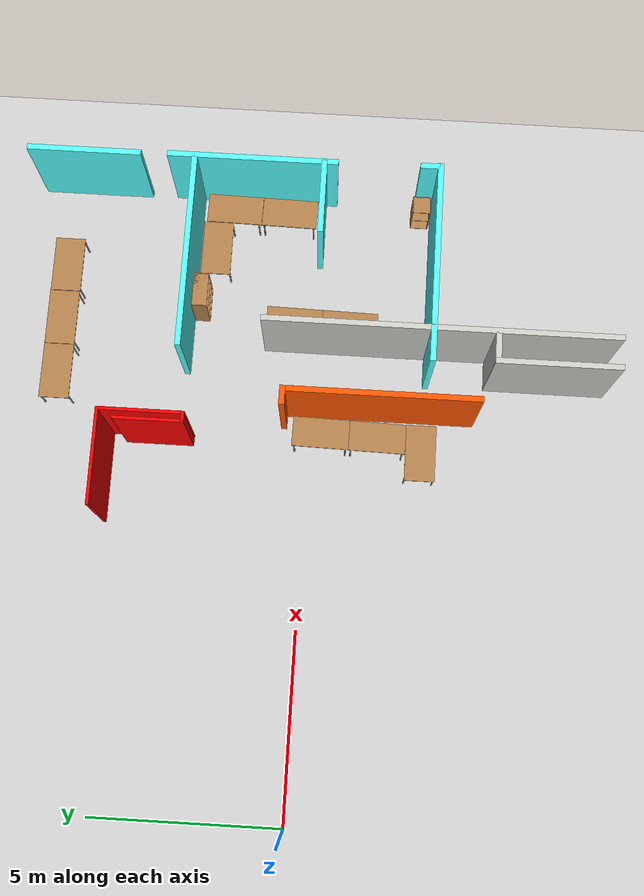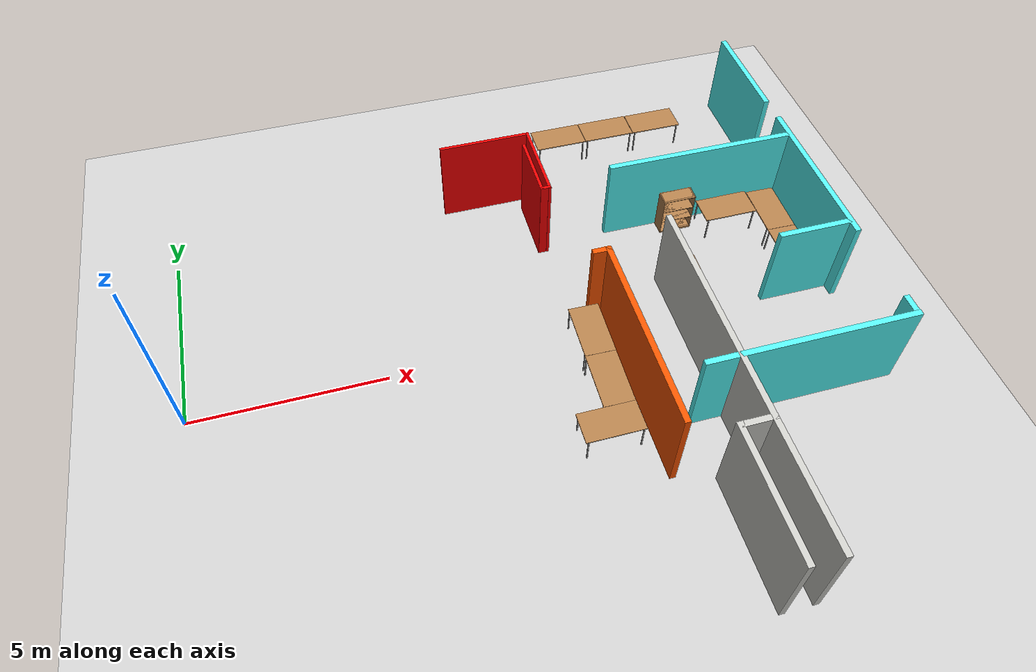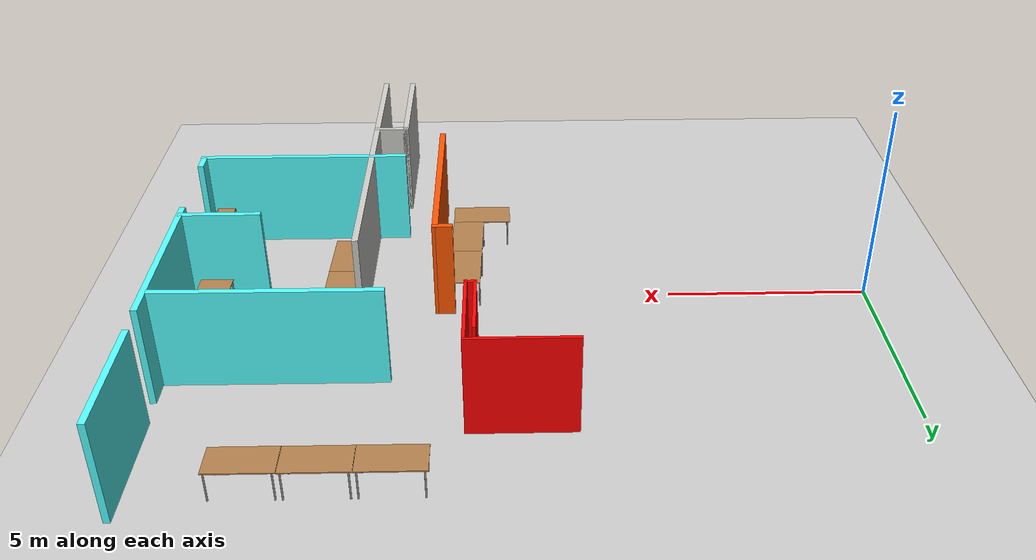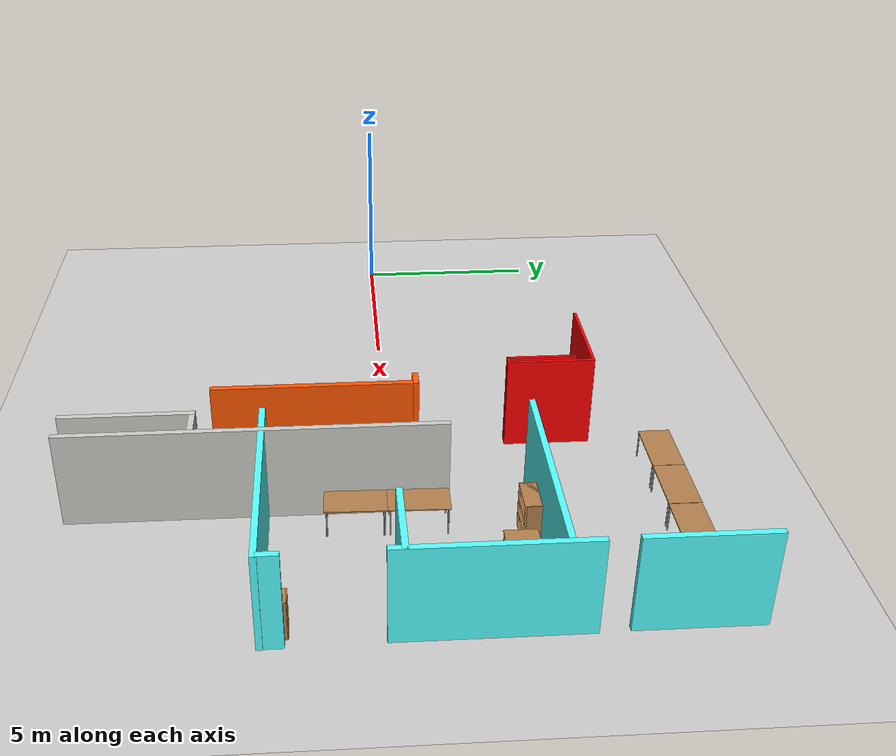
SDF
<sdf version="1.7">
 <world name="default">
  <model name="ground_plane">
   <static>1</static>
   <link name="link">
    <collision name="collision">
     <geometry><plane><normal>0 0 1</normal><size>100 100</size></plane></geometry>
     <surface>
      <contact><collide_bitmask>65535</collide_bitmask></contact>
      <friction><ode><mu>100</mu><mu2>50</mu2></ode></friction>
     </surface>
    </collision>
    <visual name="visual">
     <cast_shadows>0</cast_shadows>
     <geometry><plane><normal>0 0 1</normal><size>100 100</size></plane></geometry>
     <material>
      <script><uri>file://media/materials/scripts/gazebo.material</uri><name>Gazebo/Grey</name></script>
     </material>
    </visual>
   </link>
  </model>
  <model name="finalfinal">
   <pose>-1.52945 0.041943 0 0 -0 0</pose>
   <link name="Wall_115">
    <collision name="Wall_115_Collision">
     <geometry><box><size>2.5 0.08 2.5</size></box></geometry>
     <pose>0 0 1.25 0 -0 0</pose>
    </collision>
    <visual name="Wall_115_Visual">
     <pose>0 0 1.25 0 -0 0</pose>
     <geometry><box><size>2.5 0.08 2.5</size></box></geometry>
     <material>
      <script><uri>file://media/materials/scripts/gazebo.material</uri><name>Gazebo/Grey</name></script>
      <ambient>1 0 0 1</ambient>
     </material>
     <meta><layer>0</layer></meta>
    </visual>
    <pose>10.3562 5.20204 0 0 -0 0</pose>
   </link>
   <link name="Wall_146">
    <collision name="Wall_146_Collision">
     <geometry><box><size>5.4 0.15 2.5</size></box></geometry>
     <pose>0 0 1.25 0 -0 0</pose>
    </collision>
    <visual name="Wall_146_Visual">
     <pose>0 0 1.25 0 -0 0</pose>
     <geometry><box><size>5.4 0.15 2.5</size></box></geometry>
     <material>
      <script><uri>file://media/materials/scripts/gazebo.material</uri><name>Gazebo/Grey</name></script>
      <ambient>0.333333 1 1 1</ambient>
     </material>
     <meta><layer>0</layer></meta>
    </visual>
    <pose>15.9871 -3.13858 0 0 -0 0</pose>
   </link>
   <link name="Wall_151">
    <collision name="Wall_151_Collision">
     <geometry><box><size>3.25 0.15 2.5</size></box></geometry>
     <pose>0 0 1.25 0 -0 0</pose>
    </collision>
    <visual name="Wall_151_Visual">
     <pose>0 0 1.25 0 -0 0</pose>
     <geometry><box><size>3.25 0.15 2.5</size></box></geometry>
     <material>
      <script><uri>file://media/materials/scripts/gazebo.material</uri><name>Gazebo/CeilingTiled</name></script>
      <ambient>1 0.333333 0 1</ambient>
     </material>
     <meta><layer>0</layer></meta>
    </visual>
    <pose>13.3962 -6.33688 0 0 -0 -1.5708</pose>
   </link>
   <link name="Wall_154">
    <collision name="Wall_154_Collision">
     <geometry><box><size>0.9 0.15 2.5</size></box></geometry>
     <pose>0 0 1.25 0 -0 0</pose>
    </collision>
    <visual name="Wall_154_Visual">
     <pose>0 0 1.25 0 -0 0</pose>
     <geometry><box><size>0.9 0.15 2.5</size></box></geometry>
     <material>
      <script><uri>file://media/materials/scripts/gazebo.material</uri><name>Gazebo/CeilingTiled</name></script>
      <ambient>1 0.333333 0 1</ambient>
     </material>
     <meta><layer>0</layer></meta>
    </visual>
    <pose>13.806 -4.78688 0 0 -0 0</pose>
   </link>
   <link name="Wall_156">
    <collision name="Wall_156_Collision">
     <geometry><box><size>3.5 0.15 2.5</size></box></geometry>
     <pose>0 0 1.25 0 -0 0</pose>
    </collision>
    <visual name="Wall_156_Visual">
     <pose>0 0 1.25 0 -0 0</pose>
     <geometry><box><size>3 0.15 2.5</size></box></geometry>
     <material>
      <script><uri>file://media/materials/scripts/gazebo.material</uri><name>Gazebo/Grey</name></script>
      <ambient>0.333333 1 1 1</ambient>
     </material>
     <meta><layer>0</layer></meta>
    </visual>
    <pose>18.531 6.22698 0 0 -0 -1.5708</pose>
   </link>
   <link name="Wall_158">
    <collision name="Wall_158_Collision">
     <geometry><box><size>4.5 0.15 2.5</size></box></geometry>
     <pose>0 0 1.25 0 -0 0</pose>
    </collision>
    <visual name="Wall_158_Visual">
     <pose>0 0 1.25 0 -0 0</pose>
     <geometry><box><size>4.5 0.15 2.5</size></box></geometry>
     <material>
      <script><uri>file://media/materials/scripts/gazebo.material</uri><name>Gazebo/Grey</name></script>
      <ambient>0.333333 1 1 1</ambient>
     </material>
     <meta><layer>0</layer></meta>
    </visual>
    <pose>18.5588 1.79182 0 0 -0 -1.5708</pose>
   </link>
   <link name="Wall_162">
    <collision name="Wall_162_Collision">
     <geometry><box><size>5.18 0.15 2.5</size></box></geometry>
     <pose>0 0 1.25 0 -0 0</pose>
    </collision>
    <visual name="Wall_162_Visual">
     <pose>0 0 1.25 0 -0 0</pose>
     <geometry><box><size>5.18 0.15 2.5</size></box></geometry>
     <material>
      <script><uri>file://media/materials/scripts/gazebo.material</uri><name>Gazebo/Grey</name></script>
      <ambient>0.333333 1 1 1</ambient>
     </material>
     <meta><layer>0</layer></meta>
    </visual>
    <pose>15.9115 3.32497 0 0 -0 3.13784</pose>
   </link>
   <link name="Wall_170">
    <collision name="Wall_170_Collision">
     <geometry><box><size>1.8 0.08 2.5</size></box></geometry>
     <pose>0 0 1.25 0 -0 0</pose>
    </collision>
    <visual name="Wall_170_Visual">
     <pose>0 0 1.25 0 -0 0</pose>
     <geometry><box><size>1.8 0.08 2.5</size></box></geometry>
     <material>
      <script><uri>file://media/materials/scripts/gazebo.material</uri><name>Gazebo/Grey</name></script>
      <ambient>1 0 0 1</ambient>
     </material>
     <meta><layer>0</layer></meta>
    </visual>
    <pose>11.3522 3.911 0 0 -0 -1.5708</pose>
   </link>
   <link name="Wall_172">
    <collision name="Wall_172_Collision">
     <geometry><box><size>2.23 0.08 2.5</size></box></geometry>
     <pose>0 0 1.25 0 -0 0</pose>
    </collision>
    <visual name="Wall_172_Visual">
     <pose>0 0 1.25 0 -0 0</pose>
     <geometry><box><size>2.23 0.08 2.5</size></box></geometry>
     <material>
      <script><uri>file://media/materials/scripts/gazebo.material</uri><name>Gazebo/Grey</name></script>
      <ambient>1 0 0 1</ambient>
     </material>
     <meta><layer>0</layer></meta>
    </visual>
    <pose>11.5668 4.11953 0 0 -0 -1.5708</pose>
   </link>
   <link name="Wall_174">
    <collision name="Wall_174_Collision">
     <geometry><box><size>0.28 0.08 2.5</size></box></geometry>
     <pose>0 0 1.25 0 -0 0</pose>
    </collision>
    <visual name="Wall_174_Visual">
     <pose>0 0 1.25 0 -0 0</pose>
     <geometry><box><size>0.28 0.08 2.5</size></box></geometry>
     <material>
      <script><uri>file://media/materials/scripts/gazebo.material</uri><name>Gazebo/Grey</name></script>
      <ambient>1 0 0 1</ambient>
     </material>
     <meta><layer>0</layer></meta>
    </visual>
    <pose>11.4569 3.04845 0 0 -0 0</pose>
   </link>
   <link name="Wall_178">
    <collision name="Wall_178_Collision">
     <geometry><box><size>2 0.15 2.5</size></box></geometry>
     <pose>0 0 1.25 0 -0 0</pose>
    </collision>
    <visual name="Wall_178_Visual">
     <pose>0 0 1.25 0 -0 0</pose>
     <geometry><box><size>2 0.15 2.5</size></box></geometry>
     <material>
      <script><uri>file://media/materials/scripts/gazebo.material</uri><name>Gazebo/Grey</name></script>
      <ambient>0.333333 1 1 1</ambient>
     </material>
     <meta><layer>0</layer></meta>
    </visual>
    <pose>17.5971 -0.088137 0 0 -0 0</pose>
   </link>
   <link name="Wall_180">
    <collision name="Wall_180_Collision">
     <geometry><box><size>0.5 0.15 2.5</size></box></geometry>
     <pose>0 0 1.25 0 -0 0</pose>
    </collision>
    <visual name="Wall_180_Visual">
     <pose>0 0 1.25 0 -0 0</pose>
     <geometry><box><size>0.5 0.15 2.5</size></box></geometry>
     <material>
      <script><uri>file://media/materials/scripts/gazebo.material</uri><name>Gazebo/Grey</name></script>
      <ambient>0.333333 1 1 1</ambient>
     </material>
     <meta><layer>0</layer></meta>
    </visual>
    <pose>18.594 -2.85834 0 0 -0 -1.5708</pose>
   </link>
   <link name="Wall_229">
    <collision name="Wall_229_Collision">
     <geometry><box><size>5.13928 0.15 2.5</size></box></geometry>
     <pose>0 0 1.25 0 -0 0</pose>
    </collision>
    <visual name="Wall_229_Visual">
     <pose>0 0 1.25 0 -0 0</pose>
     <geometry><box><size>5.13928 0.15 2.5</size></box></geometry>
     <material>
      <script><uri>file://media/materials/scripts/gazebo.material</uri><name>Gazebo/Grey</name></script>
      <ambient>1 0.333333 0 1</ambient>
     </material>
     <meta><layer>0</layer></meta>
    </visual>
    <pose>12.3548 -1.88696 0 0 -0 1.57126</pose>
   </link>
   <link name="Wall_240">
    <collision name="Wall_240_Collision">
     <geometry><box><size>0.5 0.15 2.5</size></box></geometry>
     <pose>0 0 1.25 0 -0 0</pose>
    </collision>
    <visual name="Wall_240_Visual">
     <pose>0 0 1.25 0 -0 0</pose>
     <geometry><box><size>0.5 0.15 2.5</size></box></geometry>
     <material>
      <script><uri>file://media/materials/scripts/gazebo.material</uri><name>Gazebo/Grey</name></script>
      <ambient>1 0.333333 0 1</ambient>
     </material>
     <meta><layer>0</layer></meta>
    </visual>
    <pose>12.1787 0.607676 0 0 -0 3.14159</pose>
   </link>
   <link name="Wall_6">
    <collision name="Wall_6_Collision">
     <geometry><box><size>9.25 0.15 2.5</size></box></geometry>
     <pose>0 0 1.25 0 -0 0</pose>
    </collision>
    <visual name="Wall_6_Visual">
     <pose>0 0 1.25 0 -0 0</pose>
     <geometry><box><size>9.25 0.15 2.5</size></box></geometry>
     <material>
      <script><uri>file://media/materials/scripts/gazebo.material</uri><name>Gazebo/CeilingTiled</name></script>
      <ambient>1 0.333333 0 1</ambient>
     </material>
     <meta><layer>0</layer></meta>
    </visual>
    <pose>14.1833 -3.34415 0 0 -0 1.5708</pose>
   </link>
   <static>1</static>
  </model>
  <model name="table_clone_clone_clone">
   <static>1</static>
   <link name="link">
    <collision name="surface">
     <pose>0 0 1 0 -0 0</pose>
     <geometry><box><size>1.5 0.8 0.03</size></box></geometry>
     <surface><friction><ode><mu>0.6</mu><mu2>0.6</mu2></ode></friction></surface>
    </collision>
    <visual name="visual1">
     <pose>0 0 1 0 -0 0</pose>
     <geometry><box><size>1.5 0.8 0.03</size></box></geometry>
     <material>
      <script><uri>file://media/materials/scripts/gazebo.material</uri><name>Gazebo/Wood</name></script>
     </material>
    </visual>
    <collision name="front_left_leg">
     <pose>0.68 0.38 0.5 0 -0 0</pose>
     <geometry><cylinder><radius>0.02</radius><length>1</length></cylinder></geometry>
    </collision>
    <visual name="front_left_leg">
     <pose>0.68 0.38 0.5 0 -0 0</pose>
     <geometry><cylinder><radius>0.02</radius><length>1</length></cylinder></geometry>
     <material>
      <script><uri>file://media/materials/scripts/gazebo.material</uri><name>Gazebo/Grey</name></script>
     </material>
    </visual>
    <collision name="front_right_leg">
     <pose>0.68 -0.38 0.5 0 -0 0</pose>
     <geometry><cylinder><radius>0.02</radius><length>1</length></cylinder></geometry>
    </collision>
    <visual name="front_right_leg">
     <pose>0.68 -0.38 0.5 0 -0 0</pose>
     <geometry><cylinder><radius>0.02</radius><length>1</length></cylinder></geometry>
     <material>
      <script><uri>file://media/materials/scripts/gazebo.material</uri><name>Gazebo/Grey</name></script>
     </material>
    </visual>
    <collision name="back_right_leg">
     <pose>-0.68 -0.38 0.5 0 -0 0</pose>
     <geometry><cylinder><radius>0.02</radius><length>1</length></cylinder></geometry>
    </collision>
    <visual name="back_right_leg">
     <pose>-0.68 -0.38 0.5 0 -0 0</pose>
     <geometry><cylinder><radius>0.02</radius><length>1</length></cylinder></geometry>
     <material>
      <script><uri>file://media/materials/scripts/gazebo.material</uri><name>Gazebo/Grey</name></script>
     </material>
    </visual>
    <collision name="back_left_leg">
     <pose>-0.68 0.38 0.5 0 -0 0</pose>
     <geometry><cylinder><radius>0.02</radius><length>1</length></cylinder></geometry>
    </collision>
    <visual name="back_left_leg">
     <pose>-0.68 0.38 0.5 0 -0 0</pose>
     <geometry><cylinder><radius>0.02</radius><length>1</length></cylinder></geometry>
     <material>
      <script><uri>file://media/materials/scripts/gazebo.material</uri><name>Gazebo/Grey</name></script>
     </material>
    </visual>
   </link>
   <pose>16.3702 2.36115 -0.3 0 -0 1.55</pose>
  </model>
  <model name="table_clone_clone_clone_0">
   <static>1</static>
   <link name="link">
    <collision name="surface">
     <pose>0 0 1 0 -0 0</pose>
     <geometry><box><size>1.5 0.8 0.03</size></box></geometry>
     <surface><friction><ode><mu>0.6</mu><mu2>0.6</mu2></ode></friction></surface>
    </collision>
    <visual name="visual1">
     <pose>0 0 1 0 -0 0</pose>
     <geometry><box><size>1.5 0.8 0.03</size></box></geometry>
     <material>
      <script><uri>file://media/materials/scripts/gazebo.material</uri><name>Gazebo/Wood</name></script>
     </material>
    </visual>
    <collision name="front_left_leg">
     <pose>0.68 0.38 0.5 0 -0 0</pose>
     <geometry><cylinder><radius>0.02</radius><length>1</length></cylinder></geometry>
    </collision>
    <visual name="front_left_leg">
     <pose>0.68 0.38 0.5 0 -0 0</pose>
     <geometry><cylinder><radius>0.02</radius><length>1</length></cylinder></geometry>
     <material>
      <script><uri>file://media/materials/scripts/gazebo.material</uri><name>Gazebo/Grey</name></script>
     </material>
    </visual>
    <collision name="front_right_leg">
     <pose>0.68 -0.38 0.5 0 -0 0</pose>
     <geometry><cylinder><radius>0.02</radius><length>1</length></cylinder></geometry>
    </collision>
    <visual name="front_right_leg">
     <pose>0.68 -0.38 0.5 0 -0 0</pose>
     <geometry><cylinder><radius>0.02</radius><length>1</length></cylinder></geometry>
     <material>
      <script><uri>file://media/materials/scripts/gazebo.material</uri><name>Gazebo/Grey</name></script>
     </material>
    </visual>
    <collision name="back_right_leg">
     <pose>-0.68 -0.38 0.5 0 -0 0</pose>
     <geometry><cylinder><radius>0.02</radius><length>1</length></cylinder></geometry>
    </collision>
    <visual name="back_right_leg">
     <pose>-0.68 -0.38 0.5 0 -0 0</pose>
     <geometry><cylinder><radius>0.02</radius><length>1</length></cylinder></geometry>
     <material>
      <script><uri>file://media/materials/scripts/gazebo.material</uri><name>Gazebo/Grey</name></script>
     </material>
    </visual>
    <collision name="back_left_leg">
     <pose>-0.68 0.38 0.5 0 -0 0</pose>
     <geometry><cylinder><radius>0.02</radius><length>1</length></cylinder></geometry>
    </collision>
    <visual name="back_left_leg">
     <pose>-0.68 0.38 0.5 0 -0 0</pose>
     <geometry><cylinder><radius>0.02</radius><length>1</length></cylinder></geometry>
     <material>
      <script><uri>file://media/materials/scripts/gazebo.material</uri><name>Gazebo/Grey</name></script>
     </material>
    </visual>
   </link>
   <pose>16.3412 0.85709 -0.3 0 -0 1.55</pose>
  </model>
  <model name="table_clone_clone_clone_1">
   <static>1</static>
   <link name="link">
    <collision name="surface">
     <pose>0 0 1 0 -0 0</pose>
     <geometry><box><size>1.5 0.8 0.03</size></box></geometry>
     <surface><friction><ode><mu>0.6</mu><mu2>0.6</mu2></ode></friction></surface>
    </collision>
    <visual name="visual1">
     <pose>0 0 1 0 -0 0</pose>
     <geometry><box><size>1.5 0.8 0.03</size></box></geometry>
     <material>
      <script><uri>file://media/materials/scripts/gazebo.material</uri><name>Gazebo/Wood</name></script>
     </material>
    </visual>
    <collision name="front_left_leg">
     <pose>0.68 0.38 0.5 0 -0 0</pose>
     <geometry><cylinder><radius>0.02</radius><length>1</length></cylinder></geometry>
    </collision>
    <visual name="front_left_leg">
     <pose>0.68 0.38 0.5 0 -0 0</pose>
     <geometry><cylinder><radius>0.02</radius><length>1</length></cylinder></geometry>
     <material>
      <script><uri>file://media/materials/scripts/gazebo.material</uri><name>Gazebo/Grey</name></script>
     </material>
    </visual>
    <collision name="front_right_leg">
     <pose>0.68 -0.38 0.5 0 -0 0</pose>
     <geometry><cylinder><radius>0.02</radius><length>1</length></cylinder></geometry>
    </collision>
    <visual name="front_right_leg">
     <pose>0.68 -0.38 0.5 0 -0 0</pose>
     <geometry><cylinder><radius>0.02</radius><length>1</length></cylinder></geometry>
     <material>
      <script><uri>file://media/materials/scripts/gazebo.material</uri><name>Gazebo/Grey</name></script>
     </material>
    </visual>
    <collision name="back_right_leg">
     <pose>-0.68 -0.38 0.5 0 -0 0</pose>
     <geometry><cylinder><radius>0.02</radius><length>1</length></cylinder></geometry>
    </collision>
    <visual name="back_right_leg">
     <pose>-0.68 -0.38 0.5 0 -0 0</pose>
     <geometry><cylinder><radius>0.02</radius><length>1</length></cylinder></geometry>
     <material>
      <script><uri>file://media/materials/scripts/gazebo.material</uri><name>Gazebo/Grey</name></script>
     </material>
    </visual>
    <collision name="back_left_leg">
     <pose>-0.68 0.38 0.5 0 -0 0</pose>
     <geometry><cylinder><radius>0.02</radius><length>1</length></cylinder></geometry>
    </collision>
    <visual name="back_left_leg">
     <pose>-0.68 0.38 0.5 0 -0 0</pose>
     <geometry><cylinder><radius>0.02</radius><length>1</length></cylinder></geometry>
     <material>
      <script><uri>file://media/materials/scripts/gazebo.material</uri><name>Gazebo/Grey</name></script>
     </material>
    </visual>
   </link>
   <pose>13.1745 -0.953297 -0.3 0 -0 1.55</pose>
  </model>
  <model name="table_clone_clone_clone_2">
   <static>1</static>
   <link name="link">
    <collision name="surface">
     <pose>0 0 1 0 -0 0</pose>
     <geometry><box><size>1.5 0.8 0.03</size></box></geometry>
     <surface><friction><ode><mu>0.6</mu><mu2>0.6</mu2></ode></friction></surface>
    </collision>
    <visual name="visual1">
     <pose>0 0 1 0 -0 0</pose>
     <geometry><box><size>1.5 0.8 0.03</size></box></geometry>
     <material>
      <script><uri>file://media/materials/scripts/gazebo.material</uri><name>Gazebo/Wood</name></script>
     </material>
    </visual>
    <collision name="front_left_leg">
     <pose>0.68 0.38 0.5 0 -0 0</pose>
     <geometry><cylinder><radius>0.02</radius><length>1</length></cylinder></geometry>
    </collision>
    <visual name="front_left_leg">
     <pose>0.68 0.38 0.5 0 -0 0</pose>
     <geometry><cylinder><radius>0.02</radius><length>1</length></cylinder></geometry>
     <material>
      <script><uri>file://media/materials/scripts/gazebo.material</uri><name>Gazebo/Grey</name></script>
     </material>
    </visual>
    <collision name="front_right_leg">
     <pose>0.68 -0.38 0.5 0 -0 0</pose>
     <geometry><cylinder><radius>0.02</radius><length>1</length></cylinder></geometry>
    </collision>
    <visual name="front_right_leg">
     <pose>0.68 -0.38 0.5 0 -0 0</pose>
     <geometry><cylinder><radius>0.02</radius><length>1</length></cylinder></geometry>
     <material>
      <script><uri>file://media/materials/scripts/gazebo.material</uri><name>Gazebo/Grey</name></script>
     </material>
    </visual>
    <collision name="back_right_leg">
     <pose>-0.68 -0.38 0.5 0 -0 0</pose>
     <geometry><cylinder><radius>0.02</radius><length>1</length></cylinder></geometry>
    </collision>
    <visual name="back_right_leg">
     <pose>-0.68 -0.38 0.5 0 -0 0</pose>
     <geometry><cylinder><radius>0.02</radius><length>1</length></cylinder></geometry>
     <material>
      <script><uri>file://media/materials/scripts/gazebo.material</uri><name>Gazebo/Grey</name></script>
     </material>
    </visual>
    <collision name="back_left_leg">
     <pose>-0.68 0.38 0.5 0 -0 0</pose>
     <geometry><cylinder><radius>0.02</radius><length>1</length></cylinder></geometry>
    </collision>
    <visual name="back_left_leg">
     <pose>-0.68 0.38 0.5 0 -0 0</pose>
     <geometry><cylinder><radius>0.02</radius><length>1</length></cylinder></geometry>
     <material>
      <script><uri>file://media/materials/scripts/gazebo.material</uri><name>Gazebo/Grey</name></script>
     </material>
    </visual>
   </link>
   <pose>13.2019 0.544796 -0.3 0 -0 1.55</pose>
  </model>
  <model name="table_2_clone_clone">
   <static>1</static>
   <link name="link">
    <collision name="surface">
     <pose>0 0 1 0 -0 0</pose>
     <geometry><box><size>1.5 0.8 0.03</size></box></geometry>
     <surface><friction><ode><mu>0.6</mu><mu2>0.6</mu2></ode></friction></surface>
    </collision>
    <visual name="visual1">
     <pose>0 0 1 0 -0 0</pose>
     <geometry><box><size>1.5 0.8 0.03</size></box></geometry>
     <material>
      <script><uri>file://media/materials/scripts/gazebo.material</uri><name>Gazebo/Wood</name></script>
     </material>
    </visual>
    <collision name="front_left_leg">
     <pose>0.68 0.38 0.5 0 -0 0</pose>
     <geometry><cylinder><radius>0.02</radius><length>1</length></cylinder></geometry>
    </collision>
    <visual name="front_left_leg">
     <pose>0.68 0.38 0.5 0 -0 0</pose>
     <geometry><cylinder><radius>0.02</radius><length>1</length></cylinder></geometry>
     <material>
      <script><uri>file://media/materials/scripts/gazebo.material</uri><name>Gazebo/Grey</name></script>
     </material>
    </visual>
    <collision name="front_right_leg">
     <pose>0.68 -0.38 0.5 0 -0 0</pose>
     <geometry><cylinder><radius>0.02</radius><length>1</length></cylinder></geometry>
    </collision>
    <visual name="front_right_leg">
     <pose>0.68 -0.38 0.5 0 -0 0</pose>
     <geometry><cylinder><radius>0.02</radius><length>1</length></cylinder></geometry>
     <material>
      <script><uri>file://media/materials/scripts/gazebo.material</uri><name>Gazebo/Grey</name></script>
     </material>
    </visual>
    <collision name="back_right_leg">
     <pose>-0.68 -0.38 0.5 0 -0 0</pose>
     <geometry><cylinder><radius>0.02</radius><length>1</length></cylinder></geometry>
    </collision>
    <visual name="back_right_leg">
     <pose>-0.68 -0.38 0.5 0 -0 0</pose>
     <geometry><cylinder><radius>0.02</radius><length>1</length></cylinder></geometry>
     <material>
      <script><uri>file://media/materials/scripts/gazebo.material</uri><name>Gazebo/Grey</name></script>
     </material>
    </visual>
    <collision name="back_left_leg">
     <pose>-0.68 0.38 0.5 0 -0 0</pose>
     <geometry><cylinder><radius>0.02</radius><length>1</length></cylinder></geometry>
    </collision>
    <visual name="back_left_leg">
     <pose>-0.68 0.38 0.5 0 -0 0</pose>
     <geometry><cylinder><radius>0.02</radius><length>1</length></cylinder></geometry>
     <material>
      <script><uri>file://media/materials/scripts/gazebo.material</uri><name>Gazebo/Grey</name></script>
     </material>
    </visual>
   </link>
   <pose>15.2129 2.77763 -0.3 0 -0 0</pose>
  </model>
  <model name="bookshelf">
   <static>1</static>
   <link name="link">
    <inertial><mass>1</mass></inertial>
    <collision name="back">
     <pose>0 0.005 0.6 0 -0 0</pose>
     <geometry><box><size>0.9 0.01 1.2</size></box></geometry>
    </collision>
    <visual name="visual1">
     <pose>0 0.005 0.6 0 -0 0</pose>
     <geometry><box><size>0.9 0.01 1.2</size></box></geometry>
     <material>
      <script><uri>file://media/materials/scripts/gazebo.material</uri><name>Gazebo/Wood</name></script>
     </material>
    </visual>
    <collision name="left_side">
     <pose>0.45 -0.195 0.6 0 -0 0</pose>
     <geometry><box><size>0.02 0.4 1.2</size></box></geometry>
    </collision>
    <visual name="visual2">
     <pose>0.45 -0.195 0.6 0 -0 0</pose>
     <geometry><box><size>0.02 0.4 1.2</size></box></geometry>
     <material>
      <script><uri>file://media/materials/scripts/gazebo.material</uri><name>Gazebo/Wood</name></script>
     </material>
    </visual>
    <collision name="right_side">
     <pose>-0.45 -0.195 0.6 0 -0 0</pose>
     <geometry><box><size>0.02 0.4 1.2</size></box></geometry>
    </collision>
    <visual name="visual3">
     <pose>-0.45 -0.195 0.6 0 -0 0</pose>
     <geometry><box><size>0.02 0.4 1.2</size></box></geometry>
     <material>
      <script><uri>file://media/materials/scripts/gazebo.material</uri><name>Gazebo/Wood</name></script>
     </material>
    </visual>
    <collision name="bottom">
     <pose>0 -0.195 0.03 0 -0 0</pose>
     <geometry><box><size>0.88 0.4 0.06</size></box></geometry>
    </collision>
    <visual name="visual4">
     <pose>0 -0.195 0.03 0 -0 0</pose>
     <geometry><box><size>0.88 0.4 0.06</size></box></geometry>
     <material>
      <script><uri>file://media/materials/scripts/gazebo.material</uri><name>Gazebo/Wood</name></script>
     </material>
    </visual>
    <collision name="top">
     <pose>0 -0.195 1.19 0 -0 0</pose>
     <geometry><box><size>0.88 0.4 0.02</size></box></geometry>
    </collision>
    <visual name="visual5">
     <pose>0 -0.195 1.19 0 -0 0</pose>
     <geometry><box><size>0.88 0.4 0.02</size></box></geometry>
     <material>
      <script><uri>file://media/materials/scripts/gazebo.material</uri><name>Gazebo/Wood</name></script>
     </material>
    </visual>
    <collision name="low_shelf">
     <pose>0 -0.195 0.43 0 -0 0</pose>
     <geometry><box><size>0.88 0.4 0.02</size></box></geometry>
    </collision>
    <visual name="visual6">
     <pose>0 -0.195 0.43 0 -0 0</pose>
     <geometry><box><size>0.88 0.4 0.02</size></box></geometry>
     <material>
      <script><uri>file://media/materials/scripts/gazebo.material</uri><name>Gazebo/Wood</name></script>
     </material>
    </visual>
    <collision name="high_shelf">
     <pose>0 -0.195 0.8 0 -0 0</pose>
     <geometry><box><size>0.88 0.4 0.02</size></box></geometry>
    </collision>
    <visual name="visual7">
     <pose>0 -0.195 0.8 0 -0 0</pose>
     <geometry><box><size>0.88 0.4 0.02</size></box></geometry>
     <material>
      <script><uri>file://media/materials/scripts/gazebo.material</uri><name>Gazebo/Wood</name></script>
     </material>
    </visual>
   </link>
   <pose>13.8031 3.28108 0 0 -0 0</pose>
  </model>
  <model name="bookshelf_clone">
   <static>1</static>
   <link name="link">
    <inertial><mass>1</mass></inertial>
    <collision name="back">
     <pose>0 0.005 0.6 0 -0 0</pose>
     <geometry><box><size>0.9 0.01 1.2</size></box></geometry>
    </collision>
    <visual name="visual1">
     <pose>0 0.005 0.6 0 -0 0</pose>
     <geometry><box><size>0.9 0.01 1.2</size></box></geometry>
     <material>
      <script><uri>file://media/materials/scripts/gazebo.material</uri><name>Gazebo/Wood</name></script>
     </material>
    </visual>
    <collision name="left_side">
     <pose>0.45 -0.195 0.6 0 -0 0</pose>
     <geometry><box><size>0.02 0.4 1.2</size></box></geometry>
    </collision>
    <visual name="visual2">
     <pose>0.45 -0.195 0.6 0 -0 0</pose>
     <geometry><box><size>0.02 0.4 1.2</size></box></geometry>
     <material>
      <script><uri>file://media/materials/scripts/gazebo.material</uri><name>Gazebo/Wood</name></script>
     </material>
    </visual>
    <collision name="right_side">
     <pose>-0.45 -0.195 0.6 0 -0 0</pose>
     <geometry><box><size>0.02 0.4 1.2</size></box></geometry>
    </collision>
    <visual name="visual3">
     <pose>-0.45 -0.195 0.6 0 -0 0</pose>
     <geometry><box><size>0.02 0.4 1.2</size></box></geometry>
     <material>
      <script><uri>file://media/materials/scripts/gazebo.material</uri><name>Gazebo/Wood</name></script>
     </material>
    </visual>
    <collision name="bottom">
     <pose>0 -0.195 0.03 0 -0 0</pose>
     <geometry><box><size>0.88 0.4 0.06</size></box></geometry>
    </collision>
    <visual name="visual4">
     <pose>0 -0.195 0.03 0 -0 0</pose>
     <geometry><box><size>0.88 0.4 0.06</size></box></geometry>
     <material>
      <script><uri>file://media/materials/scripts/gazebo.material</uri><name>Gazebo/Wood</name></script>
     </material>
    </visual>
    <collision name="top">
     <pose>0 -0.195 1.19 0 -0 0</pose>
     <geometry><box><size>0.88 0.4 0.02</size></box></geometry>
    </collision>
    <visual name="visual5">
     <pose>0 -0.195 1.19 0 -0 0</pose>
     <geometry><box><size>0.88 0.4 0.02</size></box></geometry>
     <material>
      <script><uri>file://media/materials/scripts/gazebo.material</uri><name>Gazebo/Wood</name></script>
     </material>
    </visual>
    <collision name="low_shelf">
     <pose>0 -0.195 0.43 0 -0 0</pose>
     <geometry><box><size>0.88 0.4 0.02</size></box></geometry>
    </collision>
    <visual name="visual6">
     <pose>0 -0.195 0.43 0 -0 0</pose>
     <geometry><box><size>0.88 0.4 0.02</size></box></geometry>
     <material>
      <script><uri>file://media/materials/scripts/gazebo.material</uri><name>Gazebo/Wood</name></script>
     </material>
    </visual>
    <collision name="high_shelf">
     <pose>0 -0.195 0.8 0 -0 0</pose>
     <geometry><box><size>0.88 0.4 0.02</size></box></geometry>
    </collision>
    <visual name="visual7">
     <pose>0 -0.195 0.8 0 -0 0</pose>
     <geometry><box><size>0.88 0.4 0.02</size></box></geometry>
     <material>
      <script><uri>file://media/materials/scripts/gazebo.material</uri><name>Gazebo/Wood</name></script>
     </material>
    </visual>
   </link>
   <pose>13.8092 3.32981 0 0 -0 0</pose>
  </model>
  <model name="cabinet">
   <static>1</static>
   <link name="cabinet_bottom_plate">
    <inertial>
     <pose>0 0 -1 0 -0 0</pose>
     <inertia><ixx>2.05</ixx><ixy>0</ixy><ixz>0</ixz><iyy>2.05</iyy><iyz>0</iyz><izz>2.05</izz></inertia>
     <mass>25</mass>
    </inertial>
    <collision name="cabinet_bottom_plate_geom">
     <pose>0 0 0.01 0 -0 0</pose>
     <geometry><box><size>0.45 0.45 0.02</size></box></geometry>
    </collision>
    <visual name="cabinet_bottom_plate_geom_visual">
     <pose>0 0 0.01 0 -0 0</pose>
     <geometry><box><size>0.45 0.45 0.02</size></box></geometry>
     <material>
      <script><uri>file://media/materials/scripts/gazebo.material</uri><name>Gazebo/Wood</name></script>
     </material>
    </visual>
    <collision name="cabinet_bottom_plate_geom_cabinet_back_plate">
     <pose>0.235 0 0.51 0 -0 0</pose>
     <geometry><box><size>0.02 0.45 1.02</size></box></geometry>
    </collision>
    <visual name="cabinet_bottom_plate_geom_cabinet_back_plate_visual">
     <pose>0.235 0 0.51 0 -0 0</pose>
     <geometry><box><size>0.02 0.45 1.02</size></box></geometry>
     <material>
      <script><uri>file://media/materials/scripts/gazebo.material</uri><name>Gazebo/Wood</name></script>
     </material>
    </visual>
    <collision name="cabinet_bottom_plate_geom_cabinet_left_plate">
     <pose>0 0.235 0.51 0 -0 0</pose>
     <geometry><box><size>0.45 0.02 1.02</size></box></geometry>
    </collision>
    <visual name="cabinet_bottom_plate_geom_cabinet_left_plate_visual">
     <pose>0 0.235 0.51 0 -0 0</pose>
     <geometry><box><size>0.45 0.02 1.02</size></box></geometry>
     <material>
      <script><uri>file://media/materials/scripts/gazebo.material</uri><name>Gazebo/Wood</name></script>
     </material>
    </visual>
    <collision name="cabinet_bottom_plate_geom_cabinet_middle_plate">
     <pose>0 0 0.51 0 -0 0</pose>
     <geometry><box><size>0.45 0.45 0.02</size></box></geometry>
    </collision>
    <visual name="cabinet_bottom_plate_geom_cabinet_middle_plate_visual">
     <pose>0 0 0.51 0 -0 0</pose>
     <geometry><box><size>0.45 0.45 0.02</size></box></geometry>
     <material>
      <script><uri>file://media/materials/scripts/gazebo.material</uri><name>Gazebo/Wood</name></script>
     </material>
    </visual>
    <collision name="cabinet_bottom_plate_geom_cabinet_right_plate">
     <pose>0 -0.235 0.51 0 -0 0</pose>
     <geometry><box><size>0.45 0.02 1.02</size></box></geometry>
    </collision>
    <visual name="cabinet_bottom_plate_geom_cabinet_right_plate_visual">
     <pose>0 -0.235 0.51 0 -0 0</pose>
     <geometry><box><size>0.45 0.02 1.02</size></box></geometry>
     <material>
      <script><uri>file://media/materials/scripts/gazebo.material</uri><name>Gazebo/Wood</name></script>
     </material>
    </visual>
    <collision name="cabinet_bottom_plate_geom_cabinet_top_plate">
     <pose>0 0 1.01 0 -0 0</pose>
     <geometry><box><size>0.45 0.45 0.02</size></box></geometry>
    </collision>
    <visual name="cabinet_bottom_plate_geom_cabinet_top_plate_visual">
     <pose>0 0 1.01 0 -0 0</pose>
     <geometry><box><size>0.45 0.45 0.02</size></box></geometry>
     <material>
      <script><uri>file://media/materials/scripts/gazebo.material</uri><name>Gazebo/Wood</name></script>
     </material>
    </visual>
   </link>
   <pose>16.6485 -2.73387 0 0 -0 0</pose>
  </model>
  <model name="table_2_clone_clone_clone">
   <static>1</static>
   <link name="link">
    <collision name="surface">
     <pose>0 0 1 0 -0 0</pose>
     <geometry><box><size>1.5 0.8 0.03</size></box></geometry>
     <surface><friction><ode><mu>0.6</mu><mu2>0.6</mu2></ode></friction></surface>
    </collision>
    <visual name="visual1">
     <pose>0 0 1 0 -0 0</pose>
     <geometry><box><size>1.5 0.8 0.03</size></box></geometry>
     <material>
      <script><uri>file://media/materials/scripts/gazebo.material</uri><name>Gazebo/Wood</name></script>
     </material>
    </visual>
    <collision name="front_left_leg">
     <pose>0.68 0.38 0.5 0 -0 0</pose>
     <geometry><cylinder><radius>0.02</radius><length>1</length></cylinder></geometry>
    </collision>
    <visual name="front_left_leg">
     <pose>0.68 0.38 0.5 0 -0 0</pose>
     <geometry><cylinder><radius>0.02</radius><length>1</length></cylinder></geometry>
     <material>
      <script><uri>file://media/materials/scripts/gazebo.material</uri><name>Gazebo/Grey</name></script>
     </material>
    </visual>
    <collision name="front_right_leg">
     <pose>0.68 -0.38 0.5 0 -0 0</pose>
     <geometry><cylinder><radius>0.02</radius><length>1</length></cylinder></geometry>
    </collision>
    <visual name="front_right_leg">
     <pose>0.68 -0.38 0.5 0 -0 0</pose>
     <geometry><cylinder><radius>0.02</radius><length>1</length></cylinder></geometry>
     <material>
      <script><uri>file://media/materials/scripts/gazebo.material</uri><name>Gazebo/Grey</name></script>
     </material>
    </visual>
    <collision name="back_right_leg">
     <pose>-0.68 -0.38 0.5 0 -0 0</pose>
     <geometry><cylinder><radius>0.02</radius><length>1</length></cylinder></geometry>
    </collision>
    <visual name="back_right_leg">
     <pose>-0.68 -0.38 0.5 0 -0 0</pose>
     <geometry><cylinder><radius>0.02</radius><length>1</length></cylinder></geometry>
     <material>
      <script><uri>file://media/materials/scripts/gazebo.material</uri><name>Gazebo/Grey</name></script>
     </material>
    </visual>
    <collision name="back_left_leg">
     <pose>-0.68 0.38 0.5 0 -0 0</pose>
     <geometry><cylinder><radius>0.02</radius><length>1</length></cylinder></geometry>
    </collision>
    <visual name="back_left_leg">
     <pose>-0.68 0.38 0.5 0 -0 0</pose>
     <geometry><cylinder><radius>0.02</radius><length>1</length></cylinder></geometry>
     <material>
      <script><uri>file://media/materials/scripts/gazebo.material</uri><name>Gazebo/Grey</name></script>
     </material>
    </visual>
   </link>
   <pose>11.4733 6.80588 -0.3 0 -0 0</pose>
  </model>
  <model name="table_2_clone_clone_clone_clone">
   <static>1</static>
   <link name="link">
    <collision name="surface">
     <pose>0 0 1 0 -0 0</pose>
     <geometry><box><size>1.5 0.8 0.03</size></box></geometry>
     <surface><friction><ode><mu>0.6</mu><mu2>0.6</mu2></ode></friction></surface>
    </collision>
    <visual name="visual1">
     <pose>0 0 1 0 -0 0</pose>
     <geometry><box><size>1.5 0.8 0.03</size></box></geometry>
     <material>
      <script><uri>file://media/materials/scripts/gazebo.material</uri><name>Gazebo/Wood</name></script>
     </material>
    </visual>
    <collision name="front_left_leg">
     <pose>0.68 0.38 0.5 0 -0 0</pose>
     <geometry><cylinder><radius>0.02</radius><length>1</length></cylinder></geometry>
    </collision>
    <visual name="front_left_leg">
     <pose>0.68 0.38 0.5 0 -0 0</pose>
     <geometry><cylinder><radius>0.02</radius><length>1</length></cylinder></geometry>
     <material>
      <script><uri>file://media/materials/scripts/gazebo.material</uri><name>Gazebo/Grey</name></script>
     </material>
    </visual>
    <collision name="front_right_leg">
     <pose>0.68 -0.38 0.5 0 -0 0</pose>
     <geometry><cylinder><radius>0.02</radius><length>1</length></cylinder></geometry>
    </collision>
    <visual name="front_right_leg">
     <pose>0.68 -0.38 0.5 0 -0 0</pose>
     <geometry><cylinder><radius>0.02</radius><length>1</length></cylinder></geometry>
     <material>
      <script><uri>file://media/materials/scripts/gazebo.material</uri><name>Gazebo/Grey</name></script>
     </material>
    </visual>
    <collision name="back_right_leg">
     <pose>-0.68 -0.38 0.5 0 -0 0</pose>
     <geometry><cylinder><radius>0.02</radius><length>1</length></cylinder></geometry>
    </collision>
    <visual name="back_right_leg">
     <pose>-0.68 -0.38 0.5 0 -0 0</pose>
     <geometry><cylinder><radius>0.02</radius><length>1</length></cylinder></geometry>
     <material>
      <script><uri>file://media/materials/scripts/gazebo.material</uri><name>Gazebo/Grey</name></script>
     </material>
    </visual>
    <collision name="back_left_leg">
     <pose>-0.68 0.38 0.5 0 -0 0</pose>
     <geometry><cylinder><radius>0.02</radius><length>1</length></cylinder></geometry>
    </collision>
    <visual name="back_left_leg">
     <pose>-0.68 0.38 0.5 0 -0 0</pose>
     <geometry><cylinder><radius>0.02</radius><length>1</length></cylinder></geometry>
     <material>
      <script><uri>file://media/materials/scripts/gazebo.material</uri><name>Gazebo/Grey</name></script>
     </material>
    </visual>
   </link>
   <pose>12.9834 6.80458 -0.3 0 -0 0</pose>
  </model>
  <model name="table_2_clone_clone_clone_clone_0">
   <static>1</static>
   <link name="link">
    <collision name="surface">
     <pose>0 0 1 0 -0 0</pose>
     <geometry><box><size>1.5 0.8 0.03</size></box></geometry>
     <surface><friction><ode><mu>0.6</mu><mu2>0.6</mu2></ode></friction></surface>
    </collision>
    <visual name="visual1">
     <pose>0 0 1 0 -0 0</pose>
     <geometry><box><size>1.5 0.8 0.03</size></box></geometry>
     <material>
      <script><uri>file://media/materials/scripts/gazebo.material</uri><name>Gazebo/Wood</name></script>
     </material>
    </visual>
    <collision name="front_left_leg">
     <pose>0.68 0.38 0.5 0 -0 0</pose>
     <geometry><cylinder><radius>0.02</radius><length>1</length></cylinder></geometry>
    </collision>
    <visual name="front_left_leg">
     <pose>0.68 0.38 0.5 0 -0 0</pose>
     <geometry><cylinder><radius>0.02</radius><length>1</length></cylinder></geometry>
     <material>
      <script><uri>file://media/materials/scripts/gazebo.material</uri><name>Gazebo/Grey</name></script>
     </material>
    </visual>
    <collision name="front_right_leg">
     <pose>0.68 -0.38 0.5 0 -0 0</pose>
     <geometry><cylinder><radius>0.02</radius><length>1</length></cylinder></geometry>
    </collision>
    <visual name="front_right_leg">
     <pose>0.68 -0.38 0.5 0 -0 0</pose>
     <geometry><cylinder><radius>0.02</radius><length>1</length></cylinder></geometry>
     <material>
      <script><uri>file://media/materials/scripts/gazebo.material</uri><name>Gazebo/Grey</name></script>
     </material>
    </visual>
    <collision name="back_right_leg">
     <pose>-0.68 -0.38 0.5 0 -0 0</pose>
     <geometry><cylinder><radius>0.02</radius><length>1</length></cylinder></geometry>
    </collision>
    <visual name="back_right_leg">
     <pose>-0.68 -0.38 0.5 0 -0 0</pose>
     <geometry><cylinder><radius>0.02</radius><length>1</length></cylinder></geometry>
     <material>
      <script><uri>file://media/materials/scripts/gazebo.material</uri><name>Gazebo/Grey</name></script>
     </material>
    </visual>
    <collision name="back_left_leg">
     <pose>-0.68 0.38 0.5 0 -0 0</pose>
     <geometry><cylinder><radius>0.02</radius><length>1</length></cylinder></geometry>
    </collision>
    <visual name="back_left_leg">
     <pose>-0.68 0.38 0.5 0 -0 0</pose>
     <geometry><cylinder><radius>0.02</radius><length>1</length></cylinder></geometry>
     <material>
      <script><uri>file://media/materials/scripts/gazebo.material</uri><name>Gazebo/Grey</name></script>
     </material>
    </visual>
   </link>
   <pose>14.4963 6.79649 -0.3 0 -0 0</pose>
  </model>
  <model name="table_clone_clone_clone_clone">
   <static>1</static>
   <link name="link">
    <collision name="surface">
     <pose>0 0 1 0 -0 0</pose>
     <geometry><box><size>1.5 0.8 0.03</size></box></geometry>
     <surface><friction><ode><mu>0.6</mu><mu2>0.6</mu2></ode></friction></surface>
    </collision>
    <visual name="visual1">
     <pose>0 0 1 0 -0 0</pose>
     <geometry><box><size>1.5 0.8 0.03</size></box></geometry>
     <material>
      <script><uri>file://media/materials/scripts/gazebo.material</uri><name>Gazebo/Wood</name></script>
     </material>
    </visual>
    <collision name="front_left_leg">
     <pose>0.68 0.38 0.5 0 -0 0</pose>
     <geometry><cylinder><radius>0.02</radius><length>1</length></cylinder></geometry>
    </collision>
    <visual name="front_left_leg">
     <pose>0.68 0.38 0.5 0 -0 0</pose>
     <geometry><cylinder><radius>0.02</radius><length>1</length></cylinder></geometry>
     <material>
      <script><uri>file://media/materials/scripts/gazebo.material</uri><name>Gazebo/Grey</name></script>
     </material>
    </visual>
    <collision name="front_right_leg">
     <pose>0.68 -0.38 0.5 0 -0 0</pose>
     <geometry><cylinder><radius>0.02</radius><length>1</length></cylinder></geometry>
    </collision>
    <visual name="front_right_leg">
     <pose>0.68 -0.38 0.5 0 -0 0</pose>
     <geometry><cylinder><radius>0.02</radius><length>1</length></cylinder></geometry>
     <material>
      <script><uri>file://media/materials/scripts/gazebo.material</uri><name>Gazebo/Grey</name></script>
     </material>
    </visual>
    <collision name="back_right_leg">
     <pose>-0.68 -0.38 0.5 0 -0 0</pose>
     <geometry><cylinder><radius>0.02</radius><length>1</length></cylinder></geometry>
    </collision>
    <visual name="back_right_leg">
     <pose>-0.68 -0.38 0.5 0 -0 0</pose>
     <geometry><cylinder><radius>0.02</radius><length>1</length></cylinder></geometry>
     <material>
      <script><uri>file://media/materials/scripts/gazebo.material</uri><name>Gazebo/Grey</name></script>
     </material>
    </visual>
    <collision name="back_left_leg">
     <pose>-0.68 0.38 0.5 0 -0 0</pose>
     <geometry><cylinder><radius>0.02</radius><length>1</length></cylinder></geometry>
    </collision>
    <visual name="back_left_leg">
     <pose>-0.68 0.38 0.5 0 -0 0</pose>
     <geometry><cylinder><radius>0.02</radius><length>1</length></cylinder></geometry>
     <material>
      <script><uri>file://media/materials/scripts/gazebo.material</uri><name>Gazebo/Grey</name></script>
     </material>
    </visual>
   </link>
   <pose>10.1698 -0.353706 -0.3 0 -0 1.55</pose>
  </model>
  <model name="table_clone_clone_clone_clone_0">
   <static>1</static>
   <link name="link">
    <collision name="surface">
     <pose>0 0 1 0 -0 0</pose>
     <geometry><box><size>1.5 0.8 0.03</size></box></geometry>
     <surface><friction><ode><mu>0.6</mu><mu2>0.6</mu2></ode></friction></surface>
    </collision>
    <visual name="visual1">
     <pose>0 0 1 0 -0 0</pose>
     <geometry><box><size>1.5 0.8 0.03</size></box></geometry>
     <material>
      <script><uri>file://media/materials/scripts/gazebo.material</uri><name>Gazebo/Wood</name></script>
     </material>
    </visual>
    <collision name="front_left_leg">
     <pose>0.68 0.38 0.5 0 -0 0</pose>
     <geometry><cylinder><radius>0.02</radius><length>1</length></cylinder></geometry>
    </collision>
    <visual name="front_left_leg">
     <pose>0.68 0.38 0.5 0 -0 0</pose>
     <geometry><cylinder><radius>0.02</radius><length>1</length></cylinder></geometry>
     <material>
      <script><uri>file://media/materials/scripts/gazebo.material</uri><name>Gazebo/Grey</name></script>
     </material>
    </visual>
    <collision name="front_right_leg">
     <pose>0.68 -0.38 0.5 0 -0 0</pose>
     <geometry><cylinder><radius>0.02</radius><length>1</length></cylinder></geometry>
    </collision>
    <visual name="front_right_leg">
     <pose>0.68 -0.38 0.5 0 -0 0</pose>
     <geometry><cylinder><radius>0.02</radius><length>1</length></cylinder></geometry>
     <material>
      <script><uri>file://media/materials/scripts/gazebo.material</uri><name>Gazebo/Grey</name></script>
     </material>
    </visual>
    <collision name="back_right_leg">
     <pose>-0.68 -0.38 0.5 0 -0 0</pose>
     <geometry><cylinder><radius>0.02</radius><length>1</length></cylinder></geometry>
    </collision>
    <visual name="back_right_leg">
     <pose>-0.68 -0.38 0.5 0 -0 0</pose>
     <geometry><cylinder><radius>0.02</radius><length>1</length></cylinder></geometry>
     <material>
      <script><uri>file://media/materials/scripts/gazebo.material</uri><name>Gazebo/Grey</name></script>
     </material>
    </visual>
    <collision name="back_left_leg">
     <pose>-0.68 0.38 0.5 0 -0 0</pose>
     <geometry><cylinder><radius>0.02</radius><length>1</length></cylinder></geometry>
    </collision>
    <visual name="back_left_leg">
     <pose>-0.68 0.38 0.5 0 -0 0</pose>
     <geometry><cylinder><radius>0.02</radius><length>1</length></cylinder></geometry>
     <material>
      <script><uri>file://media/materials/scripts/gazebo.material</uri><name>Gazebo/Grey</name></script>
     </material>
    </visual>
   </link>
   <pose>10.1348 -1.85537 -0.3 0 -0 1.55</pose>
  </model>
  <model name="table_2_clone_clone_clone_clone_1">
   <static>1</static>
   <link name="link">
    <collision name="surface">
     <pose>0 0 1 0 -0 0</pose>
     <geometry><box><size>1.5 0.8 0.03</size></box></geometry>
     <surface><friction><ode><mu>0.6</mu><mu2>0.6</mu2></ode></friction></surface>
    </collision>
    <visual name="visual1">
     <pose>0 0 1 0 -0 0</pose>
     <geometry><box><size>1.5 0.8 0.03</size></box></geometry>
     <material>
      <script><uri>file://media/materials/scripts/gazebo.material</uri><name>Gazebo/Wood</name></script>
     </material>
    </visual>
    <collision name="front_left_leg">
     <pose>0.68 0.38 0.5 0 -0 0</pose>
     <geometry><cylinder><radius>0.02</radius><length>1</length></cylinder></geometry>
    </collision>
    <visual name="front_left_leg">
     <pose>0.68 0.38 0.5 0 -0 0</pose>
     <geometry><cylinder><radius>0.02</radius><length>1</length></cylinder></geometry>
     <material>
      <script><uri>file://media/materials/scripts/gazebo.material</uri><name>Gazebo/Grey</name></script>
     </material>
    </visual>
    <collision name="front_right_leg">
     <pose>0.68 -0.38 0.5 0 -0 0</pose>
     <geometry><cylinder><radius>0.02</radius><length>1</length></cylinder></geometry>
    </collision>
    <visual name="front_right_leg">
     <pose>0.68 -0.38 0.5 0 -0 0</pose>
     <geometry><cylinder><radius>0.02</radius><length>1</length></cylinder></geometry>
     <material>
      <script><uri>file://media/materials/scripts/gazebo.material</uri><name>Gazebo/Grey</name></script>
     </material>
    </visual>
    <collision name="back_right_leg">
     <pose>-0.68 -0.38 0.5 0 -0 0</pose>
     <geometry><cylinder><radius>0.02</radius><length>1</length></cylinder></geometry>
    </collision>
    <visual name="back_right_leg">
     <pose>-0.68 -0.38 0.5 0 -0 0</pose>
     <geometry><cylinder><radius>0.02</radius><length>1</length></cylinder></geometry>
     <material>
      <script><uri>file://media/materials/scripts/gazebo.material</uri><name>Gazebo/Grey</name></script>
     </material>
    </visual>
    <collision name="back_left_leg">
     <pose>-0.68 0.38 0.5 0 -0 0</pose>
     <geometry><cylinder><radius>0.02</radius><length>1</length></cylinder></geometry>
    </collision>
    <visual name="back_left_leg">
     <pose>-0.68 0.38 0.5 0 -0 0</pose>
     <geometry><cylinder><radius>0.02</radius><length>1</length></cylinder></geometry>
     <material>
      <script><uri>file://media/materials/scripts/gazebo.material</uri><name>Gazebo/Grey</name></script>
     </material>
    </visual>
   </link>
   <pose>9.76975 -3.0034 -0.3 0 -0 0</pose>
  </model>
 </world>
</sdf>
